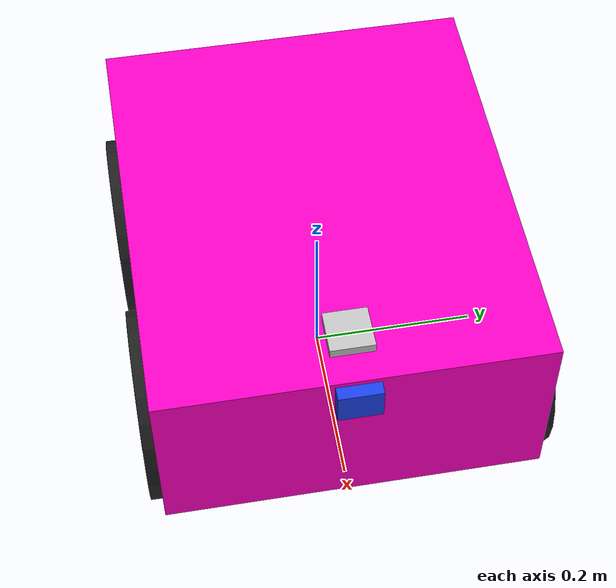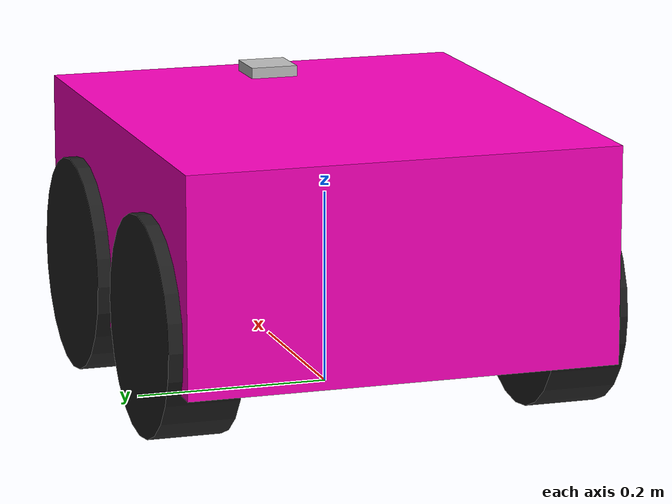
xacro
<?xml version="1.0"?>
<robot name="pioneer3at_body" xmlns:xacro="http://www.ros.org/wiki/xacro">
  <xacro:property name="wheel_radius" value="0.111"/>
  <xacro:property name="wheel_length" value="0.075"/>
  <xacro:property name="wheel_separation" value="0.394"/>
  <xacro:property name="wheel_damping" value="0.7"/>
  <xacro:property name="odom_publish_frequency" value="20.0"/>

  <link name="base_link">
    <inertial>
      <mass value="20.0"/>
      <origin xyz="0 0 0.177"/>
      <inertia ixx="0.3338" ixy="0.0" ixz="0.0" iyy="0.4783" iyz="0.0" izz="0.3338"/>
    </inertial>
    <visual>
      <origin xyz="0 0 0.177"/>
      <geometry>
        <box size="0.52 0.44 0.22"/>
      </geometry>
      <material name="ChassisRed">
        <color rgba="1.0 0.0 0.75 1.0"/>
      </material>
    </visual>
    <collision>
      <origin xyz="0 0 0.177"/>
      <geometry>
        <box size="0.52 0.44 0.22"/>
      </geometry>
    </collision>
    <visual>
      <origin xyz="0.043 0 0.254"/>
      <geometry>
        <box size="0.22 0.22 0.04"/>
      </geometry>
      <material name="TopBlack">
        <color rgba="1.0 0.9 0.1 1.0"/>
      </material>
    </visual>
    <collision>
      <origin xyz="0.043 0 0.254"/>
      <geometry>
        <box size="0.20 0.20 0.05"/>
      </geometry>
    </collision>
  </link>

  <xacro:macro name="wheel_module" params="prefix axle_x axle_y hub_y hubcap_mesh">
    <link name="p3at_${prefix}_axle">
      <inertial>
        <mass value="0.1"/>
        <origin xyz="0 0 0"/>
        <inertia ixx="1.0" ixy="0.0" ixz="0.0" iyy="1.0" iyz="0.0" izz="1.0"/>
      </inertial>
      <visual>
        <origin xyz="0 0 0"/>
        <geometry>
          <box size="0.03 0.03 0.03"/>
        </geometry>
        <material name="AxleGrey">
          <color rgba="0.5 0.5 0.5 1.0"/>
        </material>
      </visual>
      <collision>
        <origin xyz="0 0 0"/>
        <geometry>
          <box size="0.03 0.03 0.03"/>
        </geometry>
      </collision>
    </link>

    <joint name="base_${prefix}_axle_joint" type="fixed">
      <origin xyz="${axle_x} ${axle_y} 0.111" rpy="0 0 0"/>
      <parent link="base_link"/>
      <child link="p3at_${prefix}_axle"/>
    </joint>

    <link name="p3at_${prefix}_hub">
      <inertial>
        <mass value="0.1"/>
        <origin xyz="0 0 0"/>
        <inertia ixx="1.0" ixy="0.0" ixz="0.0" iyy="1.0" iyz="0.0" izz="1.0"/>
      </inertial>
      <visual>
        <origin xyz="0 0 0"/>
        <geometry>
          <cylinder radius="0.028" length="0.025"/>
        </geometry>
        <material name="HubcapYellow">
          <color rgba="1.0 0.811 0.151 1.0"/>
        </material>
      </visual>
      <collision>
        <origin xyz="0 0 0"/>
        <geometry>
          <box size="0.03 0.03 0.03"/>
        </geometry>
      </collision>
    </link>

    <joint name="base_${prefix}_hub_joint" type="fixed">
      <origin xyz="0 ${hub_y} 0" rpy="0 0 0"/>
      <parent link="p3at_${prefix}_axle"/>
      <child link="p3at_${prefix}_hub"/>
    </joint>

    <link name="p3at_${prefix}_wheel">
      <inertial>
        <mass value="0.5"/>
        <origin xyz="0 0 0"/>
        <inertia ixx="0.012411765597" ixy="0" ixz="0" iyy="0.015218160428" iyz="0" izz="0.011763977943"/>
      </inertial>
      <visual>
        <origin xyz="0 0 0" rpy="-1.57079635 0 0"/>
        <geometry>
          <cylinder radius="${wheel_radius}" length="${wheel_length}"/>
        </geometry>
        <material name="WheelBlack">
          <color rgba="0.117 0.117 0.117 1.0"/>
        </material>
      </visual>
      <collision>
        <origin xyz="0 0 0" rpy="-1.57079635 0 0"/>
        <geometry>
          <cylinder radius="${wheel_radius}" length="${wheel_length}"/>
        </geometry>
      </collision>
    </link>

    <joint name="p3at_${prefix}_wheel_joint" type="continuous">
      <origin xyz="0 0 0" rpy="0 0 0"/>
      <parent link="p3at_${prefix}_hub"/>
      <child link="p3at_${prefix}_wheel"/>
      <axis xyz="0 1 0"/>
      <limit effort="100" velocity="100"/>
      <dynamics damping="${wheel_damping}"/>
    </joint>

    <gazebo reference="p3at_${prefix}_wheel">
      <kp>10000000.0</kp>
      <kd>100.0</kd>
    </gazebo>
  </xacro:macro>

  <xacro:wheel_module prefix="front_left" axle_x="0.135" axle_y="0.156" hub_y="0.041" hubcap_mesh="left_hubcap.dae"/>
  <xacro:wheel_module prefix="front_right" axle_x="0.135" axle_y="-0.156" hub_y="-0.041" hubcap_mesh="right_hubcap.dae"/>
  <xacro:wheel_module prefix="back_left" axle_x="-0.135" axle_y="0.156" hub_y="0.041" hubcap_mesh="left_hubcap.dae"/>
  <xacro:wheel_module prefix="back_right" axle_x="-0.135" axle_y="-0.156" hub_y="-0.041" hubcap_mesh="right_hubcap.dae"/>

  <joint name="laser_joint" type="fixed">
    <parent link="base_link"/>
    <child link="laser_frame"/>
    <origin xyz="0.2 0 0.281" rpy="0 0 0"/>
  </joint>

  <link name="laser_frame">
    <inertial>
      <mass value="1e-5"/>
      <origin xyz="0 0 0"/>
      <inertia ixx="1e-6" ixy="0" ixz="0" iyy="1e-6" iyz="0" izz="1e-6"/>
    </inertial>
    <visual>
      <origin xyz="0 0 0"/>
      <geometry>
        <box size="0.05 0.05 0.035"/>
      </geometry>
      <material name="LaserGrey">
        <color rgba="0.75 0.75 0.75 1.0"/>
      </material>
    </visual>
    <collision>
      <origin xyz="0 0 0"/>
      <geometry>
        <box size="0.04 0.04 0.03"/>
      </geometry>
    </collision>
  </link>

  <joint name="cam_joint" type="fixed">
    <parent link="base_link"/>
    <child link="cam_frame"/>
    <origin xyz="0.24 0 0.261" rpy="0 0 0"/>
  </joint>

  <link name="cam_frame">
    <inertial>
      <mass value="0.05"/>
      <origin xyz="0 0 0"/>
      <inertia ixx="1e-4" ixy="0" ixz="0" iyy="1e-4" iyz="0" izz="1e-4"/>
    </inertial>
    <visual>
      <origin xyz="0 0 0"/>
      <geometry>
        <box size="0.07 0.05 0.04"/>
      </geometry>
      <material name="CameraBlue">
        <color rgba="0.1 0.25 0.9 1.0"/>
      </material>
    </visual>
    <collision>
      <origin xyz="0 0 0"/>
      <geometry>
        <box size="0.06 0.05 0.04"/>
      </geometry>
    </collision>
  </link>

  <joint name="cam_optical_joint" type="fixed">
    <parent link="cam_frame"/>
    <child link="cam_optical_link"/>
    <origin xyz="0 0 0" rpy="-1.5708 0 -1.5708"/>
  </joint>

  <link name="cam_optical_link"/>

  <joint name="gps_joint" type="fixed">
    <parent link="base_link"/>
    <child link="gps_link"/>
    <origin xyz="0 0 0.34" rpy="0 0 0"/>
  </joint>

  <link name="gps_link">
    <inertial>
      <mass value="1e-5"/>
      <origin xyz="0 0 0"/>
      <inertia ixx="1e-6" ixy="0" ixz="0" iyy="1e-6" iyz="0" izz="1e-6"/>
    </inertial>
  </link>

  <gazebo reference="laser_frame">
    <sensor name="front_lidar" type="gpu_lidar">
      <topic>scan</topic>
      <update_rate>10</update_rate>
      <gz_frame_id>laser_frame</gz_frame_id>
      <always_on>true</always_on>
      <lidar>
        <scan>
          <horizontal>
            <samples>810</samples>
            <resolution>1</resolution>
            <min_angle>-2.35619</min_angle>
            <max_angle>2.35619</max_angle>
          </horizontal>
        </scan>
        <range>
          <min>0.05</min>
          <max>20.0</max>
          <resolution>0.01</resolution>
        </range>
        <noise>
          <type>gaussian</type>
          <mean>0.0</mean>
          <stddev>0.02</stddev>
        </noise>
      </lidar>
    </sensor>
  </gazebo>

  <gazebo reference="cam_frame">
    <sensor name="front_camera" type="camera">
      <topic>camera/image</topic>
      <update_rate>2</update_rate>
      <gz_frame_id>cam_optical_link</gz_frame_id>
      <always_on>true</always_on>
      <camera>
        <camera_info_topic>camera/camera_info</camera_info_topic>
        <horizontal_fov>1.204277</horizontal_fov>
        <image>
          <width>160</width>
          <height>120</height>
          <format>R8G8B8</format>
        </image>
        <clip>
          <near>0.1</near>
          <far>12.0</far>
        </clip>
        <noise>
          <type>gaussian</type>
          <mean>0.0</mean>
          <stddev>0.0075</stddev>
        </noise>
      </camera>
    </sensor>
  </gazebo>

  <gazebo reference="base_link">
    <sensor name="imu_sensor" type="imu">
      <topic>imu</topic>
      <gz_frame_id>base_link</gz_frame_id>
      <update_rate>20</update_rate>
      <always_on>true</always_on>
      <imu>
        <angular_velocity>
          <x><noise type="gaussian"><mean>0</mean><stddev>0.001</stddev></noise></x>
          <y><noise type="gaussian"><mean>0</mean><stddev>0.001</stddev></noise></y>
          <z><noise type="gaussian"><mean>0</mean><stddev>0.001</stddev></noise></z>
        </angular_velocity>
        <linear_acceleration>
          <x><noise type="gaussian"><mean>0</mean><stddev>0.05</stddev></noise></x>
          <y><noise type="gaussian"><mean>0</mean><stddev>0.05</stddev></noise></y>
          <z><noise type="gaussian"><mean>0</mean><stddev>0.05</stddev></noise></z>
        </linear_acceleration>
      </imu>
    </sensor>
  </gazebo>

  <gazebo>
    <plugin filename="gz-sim-joint-state-publisher-system" name="gz::sim::systems::JointStatePublisher">
      <topic>joint_states</topic>
    </plugin>
    <plugin filename="gz-sim-diff-drive-system" name="gz::sim::systems::DiffDrive">
      <left_joint>p3at_front_left_wheel_joint</left_joint>
      <left_joint>p3at_back_left_wheel_joint</left_joint>
      <right_joint>p3at_front_right_wheel_joint</right_joint>
      <right_joint>p3at_back_right_wheel_joint</right_joint>
      <wheel_separation>${wheel_separation}</wheel_separation>
      <wheel_radius>${wheel_radius}</wheel_radius>
      <odom_publish_frequency>${odom_publish_frequency}</odom_publish_frequency>
      <topic>cmd_vel</topic>
      <odom_topic>odom</odom_topic>
      <frame_id>odom</frame_id>
      <child_frame_id>base_link</child_frame_id>
      <publish_odom>true</publish_odom>
      <publish_odom_tf>false</publish_odom_tf>
    </plugin>
  </gazebo>
</robot>
